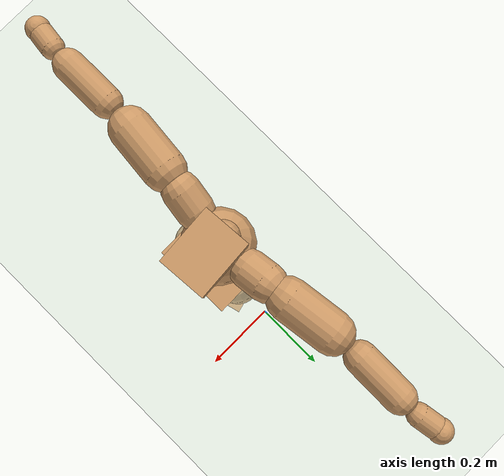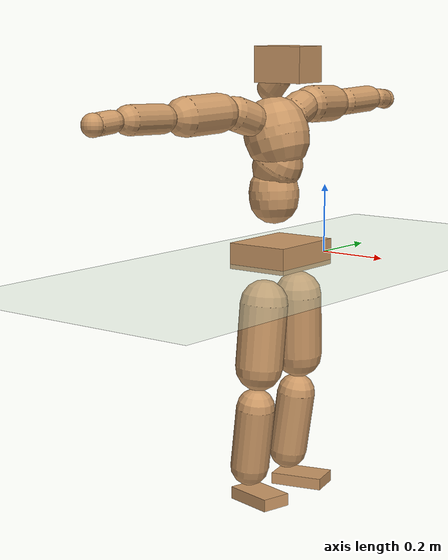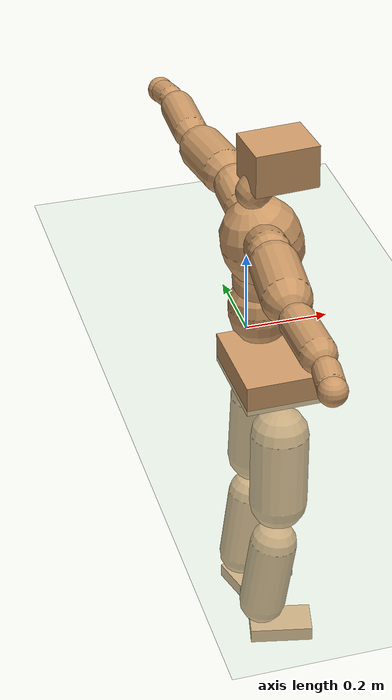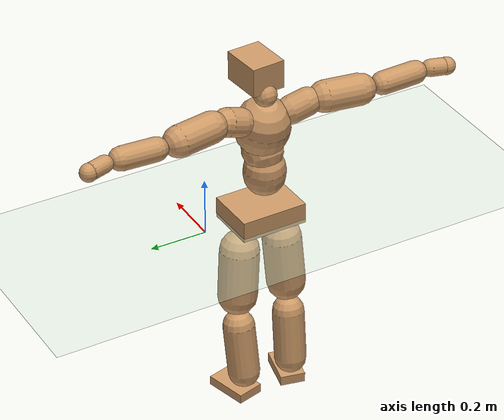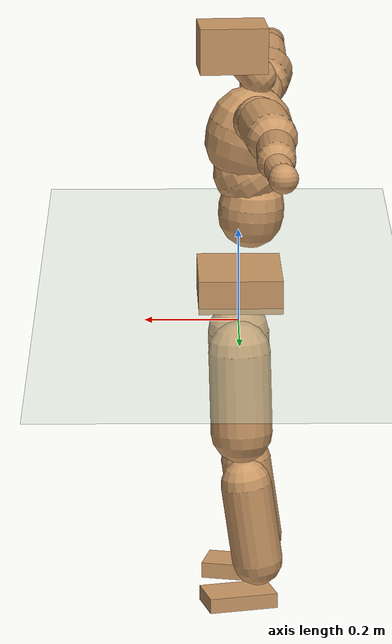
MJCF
<mujoco model="humanoid">
  <compiler coordinate="local" angle="radian"/>
  <default>
    <joint damping="0.0" armature="0.01" stiffness="0.0" limited="true"/>
    <geom conaffinity="1" condim="3" contype="7" margin="0.001" rgba="0.8 0.6 .4 1"/>
  </default>
  <asset>
    <texture type="skybox" builtin="gradient" rgb1=".4 .5 .6" rgb2="0 0 0" width="100" height="100"/>
    <texture builtin="flat" height="1278" mark="cross" markrgb="1 1 1" name="texgeom" random="0.01" rgb1="0.8 0.6 0.4" rgb2="0.8 0.6 0.4" type="cube" width="127"/>
    <texture builtin="checker" height="100" name="texplane" rgb1="0 0 0" rgb2="0.8 0.8 0.8" type="2d" width="100"/>
    <material name="MatPlane" reflectance="0.5" shininess="1" specular="1" texrepeat="60 60" texture="texplane"/>
    <material name="geom" texture="texgeom" texuniform="true"/>
  </asset>
  <worldbody>
    <light cutoff="100" diffuse="1 1 1" dir="-0 0 -1.3" directional="true" exponent="1" pos="0 0 1.3" specular=".1 .1 .1"/>
    <geom conaffinity="1" condim="3" name="floor" pos="0 0 0" rgba="0.8 0.9 0.8 1" size="100 100 .2" type="plane" material="MatPlane"/>
    <body name="Pelvis" pos="-0 -0.2062 0.0339">
      <freejoint name="Pelvis"/>
      <geom type="box" contype="1" conaffinity="1" density="500" pos="-0.0054 -0.0001 -0.0117" size="0.0918 0.1176 0.0369" quat="1.0000 0.0000 0.0000 0.0084" name="Pelvis"/>
      <body name="L_Hip" pos="-0.0028 0.0777 -0.0839">
        <joint name="L_Hip_x" type="hinge" pos="0 0 0" axis="1 0 0" stiffness="800" damping="80" armature="0.02" range="-180.0000 180.0000"/>
        <joint name="L_Hip_y" type="hinge" pos="0 0 0" axis="0 1 0" stiffness="800" damping="80" armature="0.02" range="-180.0000 180.0000"/>
        <joint name="L_Hip_z" type="hinge" pos="0 0 0" axis="0 0 1" stiffness="800" damping="80" armature="0.02" range="-180.0000 180.0000"/>
        <geom type="capsule" contype="1" conaffinity="1" density="500" fromto="-0.0016 0.0039 -0.0598 -0.0065 0.0157 -0.2393" size="0.0684" name="L_Hip"/>
        <body name="L_Knee" pos="-0.0082 0.0197 -0.2991">
          <joint name="L_Knee_x" type="hinge" pos="0 0 0" axis="1 0 0" stiffness="800" damping="80" armature="0.02" range="-180.0000 180.0000"/>
          <joint name="L_Knee_y" type="hinge" pos="0 0 0" axis="0 1 0" stiffness="800" damping="80" armature="0.02" range="-180.0000 180.0000"/>
          <joint name="L_Knee_z" type="hinge" pos="0 0 0" axis="0 0 1" stiffness="800" damping="80" armature="0.02" range="-180.0000 180.0000"/>
          <geom type="capsule" contype="1" conaffinity="1" density="500" fromto="-0.0085 -0.0016 -0.0599 -0.0341 -0.0063 -0.2396" size="0.0559" name="L_Knee"/>
          <body name="L_Ankle" pos="-0.0427 -0.0079 -0.2996">
            <joint name="L_Ankle_x" type="hinge" pos="0 0 0" axis="1 0 0" stiffness="800" damping="80" armature="0.02" range="-180.0000 180.0000"/>
            <joint name="L_Ankle_y" type="hinge" pos="0 0 0" axis="0 1 0" stiffness="800" damping="80" armature="0.02" range="-180.0000 180.0000"/>
            <joint name="L_Ankle_z" type="hinge" pos="0 0 0" axis="0 0 1" stiffness="800" damping="80" armature="0.02" range="-180.0000 180.0000"/>
            <geom type="box" contype="1" conaffinity="1" density="500" pos="0.0506 0.0130 -0.0221" size="0.0765 0.0474 0.0166" quat="0.9921 0.0000 0.0000 0.1255" name="L_Ankle"/>
            <body name="L_Toe" pos="0.1013 0.026 -0.0441">
              <joint name="L_Toe_x" type="hinge" pos="0 0 0" axis="1 0 0" stiffness="500" damping="50" armature="0.02" range="-180.0000 180.0000"/>
              <joint name="L_Toe_y" type="hinge" pos="0 0 0" axis="0 1 0" stiffness="500" damping="50" armature="0.02" range="-180.0000 180.0000"/>
              <joint name="L_Toe_z" type="hinge" pos="0 0 0" axis="0 0 1" stiffness="500" damping="50" armature="0.02" range="-180.0000 180.0000"/>
              <geom type="box" contype="1" conaffinity="1" density="500" pos="0.0000 0.0000 0.0229" size="0.0009 0.0023 0.0009" quat="0.9912 0.0000 0.0000 0.1322" name="L_Toe"/>
            </body>
          </body>
        </body>
      </body>
      <body name="R_Hip" pos="-0.0024 -0.0761 -0.0828">
        <joint name="R_Hip_x" type="hinge" pos="0 0 0" axis="1 0 0" stiffness="800" damping="80" armature="0.02" range="-180.0000 180.0000"/>
        <joint name="R_Hip_y" type="hinge" pos="0 0 0" axis="0 1 0" stiffness="800" damping="80" armature="0.02" range="-180.0000 180.0000"/>
        <joint name="R_Hip_z" type="hinge" pos="0 0 0" axis="0 0 1" stiffness="800" damping="80" armature="0.02" range="-180.0000 180.0000"/>
        <geom type="capsule" contype="1" conaffinity="1" density="500" fromto="-0.0022 -0.0045 -0.0610 -0.0088 -0.0182 -0.2442" size="0.068" name="R_Hip"/>
        <body name="R_Knee" pos="-0.011 -0.0227 -0.3052">
          <joint name="R_Knee_x" type="hinge" pos="0 0 0" axis="1 0 0" stiffness="800" damping="80" armature="0.02" range="-180.0000 180.0000"/>
          <joint name="R_Knee_y" type="hinge" pos="0 0 0" axis="0 1 0" stiffness="800" damping="80" armature="0.02" range="-180.0000 180.0000"/>
          <joint name="R_Knee_z" type="hinge" pos="0 0 0" axis="0 0 1" stiffness="800" damping="80" armature="0.02" range="-180.0000 180.0000"/>
          <geom type="capsule" contype="1" conaffinity="1" density="500" fromto="-0.0086 0.0018 -0.0601 -0.0343 0.0072 -0.2403" size="0.056" name="R_Knee"/>
          <body name="R_Ankle" pos="-0.0429 0.009 -0.3003">
            <joint name="R_Ankle_x" type="hinge" pos="0 0 0" axis="1 0 0" stiffness="800" damping="80" armature="0.02" range="-180.0000 180.0000"/>
            <joint name="R_Ankle_y" type="hinge" pos="0 0 0" axis="0 1 0" stiffness="800" damping="80" armature="0.02" range="-180.0000 180.0000"/>
            <joint name="R_Ankle_z" type="hinge" pos="0 0 0" axis="0 0 1" stiffness="800" damping="80" armature="0.02" range="-180.0000 180.0000"/>
            <geom type="box" contype="1" conaffinity="1" density="500" pos="0.0522 -0.0117 -0.0190" size="0.0744 0.0439 0.0176" quat="0.9939 0.0000 0.0000 -0.1104" name="R_Ankle"/>
            <body name="R_Toe" pos="0.1043 -0.0235 -0.0381">
              <joint name="R_Toe_x" type="hinge" pos="0 0 0" axis="1 0 0" stiffness="500" damping="50" armature="0.02" range="-180.0000 180.0000"/>
              <joint name="R_Toe_y" type="hinge" pos="0 0 0" axis="0 1 0" stiffness="500" damping="50" armature="0.02" range="-180.0000 180.0000"/>
              <joint name="R_Toe_z" type="hinge" pos="0 0 0" axis="0 0 1" stiffness="500" damping="50" armature="0.02" range="-180.0000 180.0000"/>
              <geom type="box" contype="1" conaffinity="1" density="500" pos="0.0000 0.0000 0.0201" size="0.0009 0.0022 0.0009" quat="0.9950 0.0000 0.0000 -0.0994" name="R_Toe"/>
            </body>
          </body>
        </body>
      </body>
      <body name="Torso" pos="-0.027 -0.0021 0.0963">
        <joint name="Torso_x" type="hinge" pos="0 0 0" axis="1 0 0" stiffness="1000" damping="100" armature="0.02" range="-180.0000 180.0000"/>
        <joint name="Torso_y" type="hinge" pos="0 0 0" axis="0 1 0" stiffness="1000" damping="100" armature="0.02" range="-180.0000 180.0000"/>
        <joint name="Torso_z" type="hinge" pos="0 0 0" axis="0 0 1" stiffness="1000" damping="100" armature="0.02" range="-180.0000 180.0000"/>
        <geom type="capsule" contype="1" conaffinity="1" density="500" fromto="-0.0043 0.0017 0.0714 -0.0028 0.0011 0.0476" size="0.0718" name="Torso"/>
        <body name="Spine" pos="-0.0071 0.0028 0.1189">
          <joint name="Spine_x" type="hinge" pos="0 0 0" axis="1 0 0" stiffness="1000" damping="100" armature="0.02" range="-180.0000 180.0000"/>
          <joint name="Spine_y" type="hinge" pos="0 0 0" axis="0 1 0" stiffness="1000" damping="100" armature="0.02" range="-180.0000 180.0000"/>
          <joint name="Spine_z" type="hinge" pos="0 0 0" axis="0 0 1" stiffness="1000" damping="100" armature="0.02" range="-180.0000 180.0000"/>
          <geom type="capsule" contype="1" conaffinity="1" density="500" fromto="0.0175 0.0011 0.0271 0.0117 0.0007 0.0180" size="0.0705" name="Spine"/>
          <body name="Chest" pos="0.0292 0.0018 0.0451">
            <joint name="Chest_x" type="hinge" pos="0 0 0" axis="1 0 0" stiffness="1000" damping="100" armature="0.02" range="-180.0000 180.0000"/>
            <joint name="Chest_y" type="hinge" pos="0 0 0" axis="0 1 0" stiffness="1000" damping="100" armature="0.02" range="-180.0000 180.0000"/>
            <joint name="Chest_z" type="hinge" pos="0 0 0" axis="0 0 1" stiffness="1000" damping="100" armature="0.02" range="-180.0000 180.0000"/>
            <geom type="capsule" contype="1" conaffinity="1" density="500" fromto="-0.0238 -0.0000 0.0799 -0.0159 -0.0000 0.0532" size="0.0924" name="Chest"/>
            <body name="Neck" pos="-0.049 0.0011 0.1841">
              <joint name="Neck_x" type="hinge" pos="0 0 0" axis="1 0 0" stiffness="500" damping="50" armature="0.02" range="-180.0000 180.0000"/>
              <joint name="Neck_y" type="hinge" pos="0 0 0" axis="0 1 0" stiffness="500" damping="50" armature="0.02" range="-180.0000 180.0000"/>
              <joint name="Neck_z" type="hinge" pos="0 0 0" axis="0 0 1" stiffness="500" damping="50" armature="0.02" range="-180.0000 180.0000"/>
              <geom type="capsule" contype="1" conaffinity="1" density="500" fromto="0.0086 0.0003 0.0101 0.0342 0.0010 0.0403" size="0.0392" name="Neck"/>
              <body name="Head" pos="0.0428 0.0013 0.0504">
                <joint name="Head_x" type="hinge" pos="0 0 0" axis="1 0 0" stiffness="500" damping="50" armature="0.02" range="-180.0000 180.0000"/>
                <joint name="Head_y" type="hinge" pos="0 0 0" axis="0 1 0" stiffness="500" damping="50" armature="0.02" range="-180.0000 180.0000"/>
                <joint name="Head_z" type="hinge" pos="0 0 0" axis="0 0 1" stiffness="500" damping="50" armature="0.02" range="-180.0000 180.0000"/>
                <geom type="box" contype="1" conaffinity="1" density="500" pos="0.0224 0.0016 0.0262" size="0.0736 0.0585 0.0501" quat="0.9993 0.0000 0.0000 0.0367" name="Head"/>
              </body>
            </body>
            <body name="L_Thorax" pos="-0.0313 0.0743 0.109">
              <joint name="L_Thorax_x" type="hinge" pos="0 0 0" axis="1 0 0" stiffness="500" damping="50" armature="0.02" range="-180.0000 180.0000"/>
              <joint name="L_Thorax_y" type="hinge" pos="0 0 0" axis="0 1 0" stiffness="500" damping="50" armature="0.02" range="-180.0000 180.0000"/>
              <joint name="L_Thorax_z" type="hinge" pos="0 0 0" axis="0 0 1" stiffness="500" damping="50" armature="0.02" range="-180.0000 180.0000"/>
              <geom type="capsule" contype="1" conaffinity="1" density="500" fromto="-0.0019 0.0171 0.0062 -0.0076 0.0685 0.0247" size="0.0489" name="L_Thorax"/>
              <body name="L_Shoulder" pos="-0.0096 0.0856 0.0309">
                <joint name="L_Shoulder_x" type="hinge" pos="0 0 0" axis="1 0 0" stiffness="500" damping="50" armature="0.02" range="-720.0000 720.0000"/>
                <joint name="L_Shoulder_y" type="hinge" pos="0 0 0" axis="0 1 0" stiffness="500" damping="50" armature="0.02" range="-720.0000 720.0000"/>
                <joint name="L_Shoulder_z" type="hinge" pos="0 0 0" axis="0 0 1" stiffness="500" damping="50" armature="0.02" range="-720.0000 720.0000"/>
                <geom type="capsule" contype="1" conaffinity="1" density="500" fromto="-0.0056 0.0419 -0.0014 -0.0224 0.1676 -0.0054" size="0.054" name="L_Shoulder"/>
                <body name="L_Elbow" pos="-0.0281 0.2095 -0.0068">
                  <joint name="L_Elbow_x" type="hinge" pos="0 0 0" axis="1 0 0" stiffness="500" damping="50" armature="0.02" range="-720.0000 720.0000"/>
                  <joint name="L_Elbow_y" type="hinge" pos="0 0 0" axis="0 1 0" stiffness="500" damping="50" armature="0.02" range="-720.0000 720.0000"/>
                  <joint name="L_Elbow_z" type="hinge" pos="0 0 0" axis="0 0 1" stiffness="500" damping="50" armature="0.02" range="-720.0000 720.0000"/>
                  <geom type="capsule" contype="1" conaffinity="1" density="500" fromto="0.0005 0.0414 0.0013 0.0021 0.1655 0.0051" size="0.0402" name="L_Elbow"/>
                  <body name="L_Wrist" pos="0.0026 0.2069 0.0064">
                    <joint name="L_Wrist_x" type="hinge" pos="0 0 0" axis="1 0 0" stiffness="300" damping="30" armature="0.02" range="-180.0000 180.0000"/>
                    <joint name="L_Wrist_y" type="hinge" pos="0 0 0" axis="0 1 0" stiffness="300" damping="30" armature="0.02" range="-180.0000 180.0000"/>
                    <joint name="L_Wrist_z" type="hinge" pos="0 0 0" axis="0 0 1" stiffness="300" damping="30" armature="0.02" range="-180.0000 180.0000"/>
                    <geom type="capsule" contype="1" conaffinity="1" density="500" fromto="-0.0024 0.0151 -0.0018 -0.0098 0.0604 -0.0073" size="0.0293" name="L_Wrist"/>
                    <body name="L_Hand" pos="-0.0122 0.0755 -0.0091">
                      <joint name="L_Hand_x" type="hinge" pos="0 0 0" axis="1 0 0" stiffness="300" damping="30" armature="0.02" range="-180.0000 180.0000"/>
                      <joint name="L_Hand_y" type="hinge" pos="0 0 0" axis="0 1 0" stiffness="300" damping="30" armature="0.02" range="-180.0000 180.0000"/>
                      <joint name="L_Hand_z" type="hinge" pos="0 0 0" axis="0 0 1" stiffness="300" damping="30" armature="0.02" range="-180.0000 180.0000"/>
                      <geom type="sphere" contype="1" conaffinity="1" density="500" size="0.0307" pos="0.0000 0.0000 0.0000" name="L_Hand"/>
                    </body>
                  </body>
                </body>
              </body>
            </body>
            <body name="R_Thorax" pos="-0.0386 -0.0754 0.1061">
              <joint name="R_Thorax_x" type="hinge" pos="0 0 0" axis="1 0 0" stiffness="500" damping="50" armature="0.02" range="-180.0000 180.0000"/>
              <joint name="R_Thorax_y" type="hinge" pos="0 0 0" axis="0 1 0" stiffness="500" damping="50" armature="0.02" range="-180.0000 180.0000"/>
              <joint name="R_Thorax_z" type="hinge" pos="0 0 0" axis="0 0 1" stiffness="500" damping="50" armature="0.02" range="-180.0000 180.0000"/>
              <geom type="capsule" contype="1" conaffinity="1" density="500" fromto="-0.0028 -0.0184 0.0060 -0.0110 -0.0735 0.0240" size="0.048" name="R_Thorax"/>
              <body name="R_Shoulder" pos="-0.0138 -0.0919 0.03">
                <joint name="R_Shoulder_x" type="hinge" pos="0 0 0" axis="1 0 0" stiffness="500" damping="50" armature="0.02" range="-720.0000 720.0000"/>
                <joint name="R_Shoulder_y" type="hinge" pos="0 0 0" axis="0 1 0" stiffness="500" damping="50" armature="0.02" range="-720.0000 720.0000"/>
                <joint name="R_Shoulder_z" type="hinge" pos="0 0 0" axis="0 0 1" stiffness="500" damping="50" armature="0.02" range="-720.0000 720.0000"/>
                <geom type="capsule" contype="1" conaffinity="1" density="500" fromto="-0.0044 -0.0422 -0.0014 -0.0175 -0.1689 -0.0054" size="0.0544" name="R_Shoulder"/>
                <body name="R_Elbow" pos="-0.0218 -0.2111 -0.0068">
                  <joint name="R_Elbow_x" type="hinge" pos="0 0 0" axis="1 0 0" stiffness="500" damping="50" armature="0.02" range="-720.0000 720.0000"/>
                  <joint name="R_Elbow_y" type="hinge" pos="0 0 0" axis="0 1 0" stiffness="500" damping="50" armature="0.02" range="-720.0000 720.0000"/>
                  <joint name="R_Elbow_z" type="hinge" pos="0 0 0" axis="0 0 1" stiffness="500" damping="50" armature="0.02" range="-720.0000 720.0000"/>
                  <geom type="capsule" contype="1" conaffinity="1" density="500" fromto="0.0002 -0.0422 0.0013 0.0007 -0.1689 0.0052" size="0.0398" name="R_Elbow"/>
                  <body name="R_Wrist" pos="0.0009 -0.2112 0.0064">
                    <joint name="R_Wrist_x" type="hinge" pos="0 0 0" axis="1 0 0" stiffness="300" damping="30" armature="0.02" range="-180.0000 180.0000"/>
                    <joint name="R_Wrist_y" type="hinge" pos="0 0 0" axis="0 1 0" stiffness="300" damping="30" armature="0.02" range="-180.0000 180.0000"/>
                    <joint name="R_Wrist_z" type="hinge" pos="0 0 0" axis="0 0 1" stiffness="300" damping="30" armature="0.02" range="-180.0000 180.0000"/>
                    <geom type="capsule" contype="1" conaffinity="1" density="500" fromto="-0.0020 -0.0151 -0.0014 -0.0079 -0.0605 -0.0055" size="0.0298" name="R_Wrist"/>
                    <body name="R_Hand" pos="-0.0099 -0.0756 -0.0068">
                      <joint name="R_Hand_x" type="hinge" pos="0 0 0" axis="1 0 0" stiffness="300" damping="30" armature="0.02" range="-180.0000 180.0000"/>
                      <joint name="R_Hand_y" type="hinge" pos="0 0 0" axis="0 1 0" stiffness="300" damping="30" armature="0.02" range="-180.0000 180.0000"/>
                      <joint name="R_Hand_z" type="hinge" pos="0 0 0" axis="0 0 1" stiffness="300" damping="30" armature="0.02" range="-180.0000 180.0000"/>
                      <geom type="sphere" contype="1" conaffinity="1" density="500" size="0.0308" pos="0.0000 0.0000 0.0000" name="R_Hand"/>
                    </body>
                  </body>
                </body>
              </body>
            </body>
          </body>
        </body>
      </body>
    </body>
  </worldbody>
  <actuator>
    <motor name="L_Hip_x" joint="L_Hip_x" gear="500"/>
    <motor name="L_Hip_y" joint="L_Hip_y" gear="500"/>
    <motor name="L_Hip_z" joint="L_Hip_z" gear="500"/>
    <motor name="L_Knee_x" joint="L_Knee_x" gear="500"/>
    <motor name="L_Knee_y" joint="L_Knee_y" gear="500"/>
    <motor name="L_Knee_z" joint="L_Knee_z" gear="500"/>
    <motor name="L_Ankle_x" joint="L_Ankle_x" gear="500"/>
    <motor name="L_Ankle_y" joint="L_Ankle_y" gear="500"/>
    <motor name="L_Ankle_z" joint="L_Ankle_z" gear="500"/>
    <motor name="L_Toe_x" joint="L_Toe_x" gear="500"/>
    <motor name="L_Toe_y" joint="L_Toe_y" gear="500"/>
    <motor name="L_Toe_z" joint="L_Toe_z" gear="500"/>
    <motor name="R_Hip_x" joint="R_Hip_x" gear="500"/>
    <motor name="R_Hip_y" joint="R_Hip_y" gear="500"/>
    <motor name="R_Hip_z" joint="R_Hip_z" gear="500"/>
    <motor name="R_Knee_x" joint="R_Knee_x" gear="500"/>
    <motor name="R_Knee_y" joint="R_Knee_y" gear="500"/>
    <motor name="R_Knee_z" joint="R_Knee_z" gear="500"/>
    <motor name="R_Ankle_x" joint="R_Ankle_x" gear="500"/>
    <motor name="R_Ankle_y" joint="R_Ankle_y" gear="500"/>
    <motor name="R_Ankle_z" joint="R_Ankle_z" gear="500"/>
    <motor name="R_Toe_x" joint="R_Toe_x" gear="500"/>
    <motor name="R_Toe_y" joint="R_Toe_y" gear="500"/>
    <motor name="R_Toe_z" joint="R_Toe_z" gear="500"/>
    <motor name="Torso_x" joint="Torso_x" gear="500"/>
    <motor name="Torso_y" joint="Torso_y" gear="500"/>
    <motor name="Torso_z" joint="Torso_z" gear="500"/>
    <motor name="Spine_x" joint="Spine_x" gear="500"/>
    <motor name="Spine_y" joint="Spine_y" gear="500"/>
    <motor name="Spine_z" joint="Spine_z" gear="500"/>
    <motor name="Chest_x" joint="Chest_x" gear="500"/>
    <motor name="Chest_y" joint="Chest_y" gear="500"/>
    <motor name="Chest_z" joint="Chest_z" gear="500"/>
    <motor name="Neck_x" joint="Neck_x" gear="500"/>
    <motor name="Neck_y" joint="Neck_y" gear="500"/>
    <motor name="Neck_z" joint="Neck_z" gear="500"/>
    <motor name="Head_x" joint="Head_x" gear="500"/>
    <motor name="Head_y" joint="Head_y" gear="500"/>
    <motor name="Head_z" joint="Head_z" gear="500"/>
    <motor name="L_Thorax_x" joint="L_Thorax_x" gear="500"/>
    <motor name="L_Thorax_y" joint="L_Thorax_y" gear="500"/>
    <motor name="L_Thorax_z" joint="L_Thorax_z" gear="500"/>
    <motor name="L_Shoulder_x" joint="L_Shoulder_x" gear="500"/>
    <motor name="L_Shoulder_y" joint="L_Shoulder_y" gear="500"/>
    <motor name="L_Shoulder_z" joint="L_Shoulder_z" gear="500"/>
    <motor name="L_Elbow_x" joint="L_Elbow_x" gear="500"/>
    <motor name="L_Elbow_y" joint="L_Elbow_y" gear="500"/>
    <motor name="L_Elbow_z" joint="L_Elbow_z" gear="500"/>
    <motor name="L_Wrist_x" joint="L_Wrist_x" gear="500"/>
    <motor name="L_Wrist_y" joint="L_Wrist_y" gear="500"/>
    <motor name="L_Wrist_z" joint="L_Wrist_z" gear="500"/>
    <motor name="L_Hand_x" joint="L_Hand_x" gear="500"/>
    <motor name="L_Hand_y" joint="L_Hand_y" gear="500"/>
    <motor name="L_Hand_z" joint="L_Hand_z" gear="500"/>
    <motor name="R_Thorax_x" joint="R_Thorax_x" gear="500"/>
    <motor name="R_Thorax_y" joint="R_Thorax_y" gear="500"/>
    <motor name="R_Thorax_z" joint="R_Thorax_z" gear="500"/>
    <motor name="R_Shoulder_x" joint="R_Shoulder_x" gear="500"/>
    <motor name="R_Shoulder_y" joint="R_Shoulder_y" gear="500"/>
    <motor name="R_Shoulder_z" joint="R_Shoulder_z" gear="500"/>
    <motor name="R_Elbow_x" joint="R_Elbow_x" gear="500"/>
    <motor name="R_Elbow_y" joint="R_Elbow_y" gear="500"/>
    <motor name="R_Elbow_z" joint="R_Elbow_z" gear="500"/>
    <motor name="R_Wrist_x" joint="R_Wrist_x" gear="500"/>
    <motor name="R_Wrist_y" joint="R_Wrist_y" gear="500"/>
    <motor name="R_Wrist_z" joint="R_Wrist_z" gear="500"/>
    <motor name="R_Hand_x" joint="R_Hand_x" gear="500"/>
    <motor name="R_Hand_y" joint="R_Hand_y" gear="500"/>
    <motor name="R_Hand_z" joint="R_Hand_z" gear="500"/>
  </actuator>
  <contact>
    <exclude body1="Torso" body2="Chest"/>
    <exclude body1="Head" body2="Chest"/>
    <exclude body1="R_Knee" body2="R_Toe"/>
    <exclude body1="R_Knee" body2="L_Ankle"/>
    <exclude body1="R_Knee" body2="L_Toe"/>
    <exclude body1="L_Knee" body2="L_Toe"/>
    <exclude body1="L_Knee" body2="R_Ankle"/>
    <exclude body1="L_Knee" body2="R_Toe"/>
    <exclude body1="L_Shoulder" body2="Chest"/>
    <exclude body1="R_Shoulder" body2="Chest"/>
  </contact>
  <sensor/>
  <size njmax="700" nconmax="700"/>
</mujoco>
